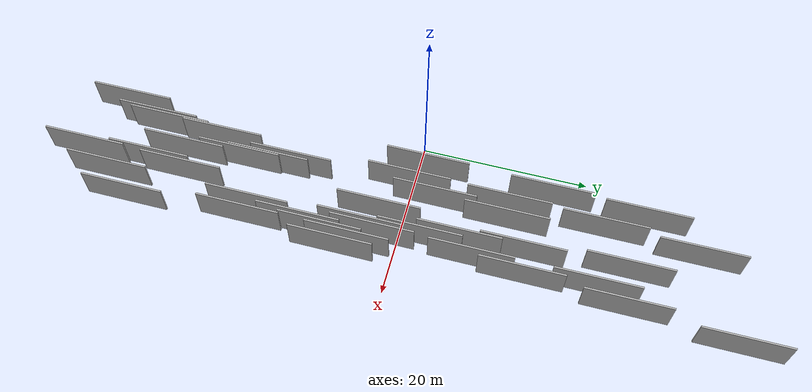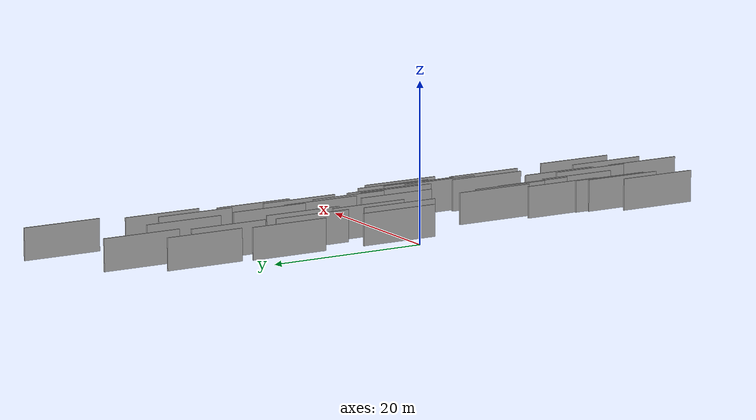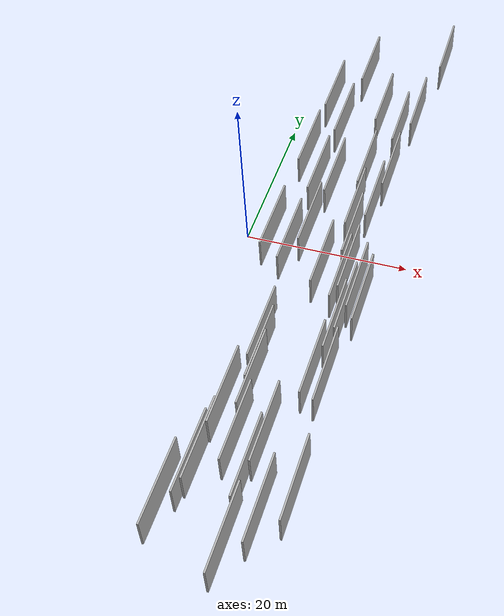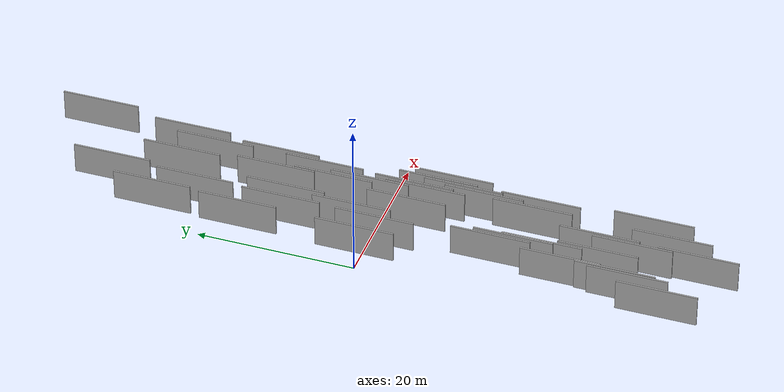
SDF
<sdf version="1.6">
 <world name="default">
  <scene>
   <sky><clouds><speed>12</speed></clouds></sky>
   <ambient>0.4 0.4 0.4 1</ambient>
   <background>0.7 0.7 0.7 1</background>
   <shadows>1</shadows>
  </scene>
  <gravity>0 0 -9.8066</gravity>
  <magnetic_field>6e-06 2.3e-05 -4.2e-05</magnetic_field>
  <physics default="0" name="default_physics" type="ode">
   <ode>
    <solver>
     <type>quick</type>
     <iters>10</iters>
     <sor>1.0</sor>
     <use_dynamic_moi_rescaling>0</use_dynamic_moi_rescaling>
    </solver>
    <constraints>
     <cfm>0</cfm>
     <erp>0.2</erp>
     <contact_max_correcting_vel>100</contact_max_correcting_vel>
     <contact_surface_layer>0.001</contact_surface_layer>
    </constraints>
   </ode>
   <max_step_size>0.004</max_step_size>
   <real_time_factor>1</real_time_factor>
   <real_time_update_rate>250</real_time_update_rate>
  </physics>
  <light name="sun" type="directional">
   <pose>0 0 10 0 0 0</pose>
   <diffuse>0.8 0.8 0.8 1</diffuse>
   <specular>0.2 0.2 0.2 1</specular>
   <attenuation>
    <range>1000</range>
    <constant>0.9</constant>
    <linear>0.01</linear>
    <quadratic>0.001</quadratic>
   </attenuation>
   <direction>-0.5 0.1 -0.9</direction>
  </light>
  <model name="grey_wall_1">
   <static>1</static>
   <pose>14.5591 14.6576 0.0 0.000000 0.000000 1.570796</pose>
   <link name="link">
    <pose>0 0 2.00 0 0 0</pose>
    <collision name="collision"><geometry><box><size>10.00 0.2 4.00</size></box></geometry></collision>
    <visual name="visual">
     <cast_shadows>0</cast_shadows>
     <geometry><box><size>10.00 0.2 4.00</size></box></geometry>
     <material>
      <script>
       <uri>model://HANNAS_wall/materials/scripts</uri>
       <uri>model://HANNAS_wall/materials/textures</uri>
       <name>vrc/HANNAS_wall</name>
      </script>
     </material>
    </visual>
   </link>
  </model>
  <model name="grey_wall_2">
   <static>1</static>
   <pose>12.6516 2.4701 0.0 0.000000 0.000000 1.570796</pose>
   <link name="link">
    <pose>0 0 2.00 0 0 0</pose>
    <collision name="collision"><geometry><box><size>10.00 0.2 4.00</size></box></geometry></collision>
    <visual name="visual">
     <cast_shadows>0</cast_shadows>
     <geometry><box><size>10.00 0.2 4.00</size></box></geometry>
     <material>
      <script>
       <uri>model://HANNAS_wall/materials/scripts</uri>
       <uri>model://HANNAS_wall/materials/textures</uri>
       <name>vrc/HANNAS_wall</name>
      </script>
     </material>
    </visual>
   </link>
  </model>
  <model name="grey_wall_3">
   <static>1</static>
   <pose>5.6440 -0.5587 0.0 0.000000 0.000000 1.570796</pose>
   <link name="link">
    <pose>0 0 2.00 0 0 0</pose>
    <collision name="collision"><geometry><box><size>10.00 0.2 4.00</size></box></geometry></collision>
    <visual name="visual">
     <cast_shadows>0</cast_shadows>
     <geometry><box><size>10.00 0.2 4.00</size></box></geometry>
     <material>
      <script>
       <uri>model://HANNAS_wall/materials/scripts</uri>
       <uri>model://HANNAS_wall/materials/textures</uri>
       <name>vrc/HANNAS_wall</name>
      </script>
     </material>
    </visual>
   </link>
  </model>
  <model name="grey_wall_4">
   <static>1</static>
   <pose>10.8336 26.2624 0.0 0.000000 0.000000 1.570796</pose>
   <link name="link">
    <pose>0 0 2.00 0 0 0</pose>
    <collision name="collision"><geometry><box><size>10.00 0.2 4.00</size></box></geometry></collision>
    <visual name="visual">
     <cast_shadows>0</cast_shadows>
     <geometry><box><size>10.00 0.2 4.00</size></box></geometry>
     <material>
      <script>
       <uri>model://HANNAS_wall/materials/scripts</uri>
       <uri>model://HANNAS_wall/materials/textures</uri>
       <name>vrc/HANNAS_wall</name>
      </script>
     </material>
    </visual>
   </link>
  </model>
  <model name="grey_wall_5">
   <static>1</static>
   <pose>14.3094 -11.5916 0.0 0.000000 0.000000 1.570796</pose>
   <link name="link">
    <pose>0 0 2.00 0 0 0</pose>
    <collision name="collision"><geometry><box><size>10.00 0.2 4.00</size></box></geometry></collision>
    <visual name="visual">
     <cast_shadows>0</cast_shadows>
     <geometry><box><size>10.00 0.2 4.00</size></box></geometry>
     <material>
      <script>
       <uri>model://HANNAS_wall/materials/scripts</uri>
       <uri>model://HANNAS_wall/materials/textures</uri>
       <name>vrc/HANNAS_wall</name>
      </script>
     </material>
    </visual>
   </link>
  </model>
  <model name="grey_wall_6">
   <static>1</static>
   <pose>5.8352 11.5006 0.0 0.000000 0.000000 1.570796</pose>
   <link name="link">
    <pose>0 0 2.00 0 0 0</pose>
    <collision name="collision"><geometry><box><size>10.00 0.2 4.00</size></box></geometry></collision>
    <visual name="visual">
     <cast_shadows>0</cast_shadows>
     <geometry><box><size>10.00 0.2 4.00</size></box></geometry>
     <material>
      <script>
       <uri>model://HANNAS_wall/materials/scripts</uri>
       <uri>model://HANNAS_wall/materials/textures</uri>
       <name>vrc/HANNAS_wall</name>
      </script>
     </material>
    </visual>
   </link>
  </model>
  <model name="grey_wall_7">
   <static>1</static>
   <pose>3.0012 1.0542 0.0 0.000000 0.000000 1.570796</pose>
   <link name="link">
    <pose>0 0 2.00 0 0 0</pose>
    <collision name="collision"><geometry><box><size>10.00 0.2 4.00</size></box></geometry></collision>
    <visual name="visual">
     <cast_shadows>0</cast_shadows>
     <geometry><box><size>10.00 0.2 4.00</size></box></geometry>
     <material>
      <script>
       <uri>model://HANNAS_wall/materials/scripts</uri>
       <uri>model://HANNAS_wall/materials/textures</uri>
       <name>vrc/HANNAS_wall</name>
      </script>
     </material>
    </visual>
   </link>
  </model>
  <model name="grey_wall_8">
   <static>1</static>
   <pose>10.9776 -39.4371 0.0 0.000000 0.000000 1.570796</pose>
   <link name="link">
    <pose>0 0 2.00 0 0 0</pose>
    <collision name="collision"><geometry><box><size>10.00 0.2 4.00</size></box></geometry></collision>
    <visual name="visual">
     <cast_shadows>0</cast_shadows>
     <geometry><box><size>10.00 0.2 4.00</size></box></geometry>
     <material>
      <script>
       <uri>model://HANNAS_wall/materials/scripts</uri>
       <uri>model://HANNAS_wall/materials/textures</uri>
       <name>vrc/HANNAS_wall</name>
      </script>
     </material>
    </visual>
   </link>
  </model>
  <model name="grey_wall_9">
   <static>1</static>
   <pose>15.4946 26.6555 0.0 0.000000 0.000000 1.570796</pose>
   <link name="link">
    <pose>0 0 2.00 0 0 0</pose>
    <collision name="collision"><geometry><box><size>10.00 0.2 4.00</size></box></geometry></collision>
    <visual name="visual">
     <cast_shadows>0</cast_shadows>
     <geometry><box><size>10.00 0.2 4.00</size></box></geometry>
     <material>
      <script>
       <uri>model://HANNAS_wall/materials/scripts</uri>
       <uri>model://HANNAS_wall/materials/textures</uri>
       <name>vrc/HANNAS_wall</name>
      </script>
     </material>
    </visual>
   </link>
  </model>
  <model name="grey_wall_10">
   <static>1</static>
   <pose>13.8523 23.0509 0.0 0.000000 0.000000 1.570796</pose>
   <link name="link">
    <pose>0 0 2.00 0 0 0</pose>
    <collision name="collision"><geometry><box><size>10.00 0.2 4.00</size></box></geometry></collision>
    <visual name="visual">
     <cast_shadows>0</cast_shadows>
     <geometry><box><size>10.00 0.2 4.00</size></box></geometry>
     <material>
      <script>
       <uri>model://HANNAS_wall/materials/scripts</uri>
       <uri>model://HANNAS_wall/materials/textures</uri>
       <name>vrc/HANNAS_wall</name>
      </script>
     </material>
    </visual>
   </link>
  </model>
  <model name="grey_wall_11">
   <static>1</static>
   <pose>8.2308 -27.8150 0.0 0.000000 0.000000 1.570796</pose>
   <link name="link">
    <pose>0 0 2.00 0 0 0</pose>
    <collision name="collision"><geometry><box><size>10.00 0.2 4.00</size></box></geometry></collision>
    <visual name="visual">
     <cast_shadows>0</cast_shadows>
     <geometry><box><size>10.00 0.2 4.00</size></box></geometry>
     <material>
      <script>
       <uri>model://HANNAS_wall/materials/scripts</uri>
       <uri>model://HANNAS_wall/materials/textures</uri>
       <name>vrc/HANNAS_wall</name>
      </script>
     </material>
    </visual>
   </link>
  </model>
  <model name="grey_wall_12">
   <static>1</static>
   <pose>7.9316 11.6078 0.0 0.000000 0.000000 1.570796</pose>
   <link name="link">
    <pose>0 0 2.00 0 0 0</pose>
    <collision name="collision"><geometry><box><size>10.00 0.2 4.00</size></box></geometry></collision>
    <visual name="visual">
     <cast_shadows>0</cast_shadows>
     <geometry><box><size>10.00 0.2 4.00</size></box></geometry>
     <material>
      <script>
       <uri>model://HANNAS_wall/materials/scripts</uri>
       <uri>model://HANNAS_wall/materials/textures</uri>
       <name>vrc/HANNAS_wall</name>
      </script>
     </material>
    </visual>
   </link>
  </model>
  <model name="grey_wall_13">
   <static>1</static>
   <pose>16.0471 -32.5343 0.0 0.000000 0.000000 1.570796</pose>
   <link name="link">
    <pose>0 0 2.00 0 0 0</pose>
    <collision name="collision"><geometry><box><size>10.00 0.2 4.00</size></box></geometry></collision>
    <visual name="visual">
     <cast_shadows>0</cast_shadows>
     <geometry><box><size>10.00 0.2 4.00</size></box></geometry>
     <material>
      <script>
       <uri>model://HANNAS_wall/materials/scripts</uri>
       <uri>model://HANNAS_wall/materials/textures</uri>
       <name>vrc/HANNAS_wall</name>
      </script>
     </material>
    </visual>
   </link>
  </model>
  <model name="grey_wall_14">
   <static>1</static>
   <pose>13.3429 -35.5786 0.0 0.000000 0.000000 1.570796</pose>
   <link name="link">
    <pose>0 0 2.00 0 0 0</pose>
    <collision name="collision"><geometry><box><size>10.00 0.2 4.00</size></box></geometry></collision>
    <visual name="visual">
     <cast_shadows>0</cast_shadows>
     <geometry><box><size>10.00 0.2 4.00</size></box></geometry>
     <material>
      <script>
       <uri>model://HANNAS_wall/materials/scripts</uri>
       <uri>model://HANNAS_wall/materials/textures</uri>
       <name>vrc/HANNAS_wall</name>
      </script>
     </material>
    </visual>
   </link>
  </model>
  <model name="grey_wall_15">
   <static>1</static>
   <pose>13.6002 -2.9209 0.0 0.000000 0.000000 1.570796</pose>
   <link name="link">
    <pose>0 0 2.00 0 0 0</pose>
    <collision name="collision"><geometry><box><size>10.00 0.2 4.00</size></box></geometry></collision>
    <visual name="visual">
     <cast_shadows>0</cast_shadows>
     <geometry><box><size>10.00 0.2 4.00</size></box></geometry>
     <material>
      <script>
       <uri>model://HANNAS_wall/materials/scripts</uri>
       <uri>model://HANNAS_wall/materials/textures</uri>
       <name>vrc/HANNAS_wall</name>
      </script>
     </material>
    </visual>
   </link>
  </model>
  <model name="grey_wall_16">
   <static>1</static>
   <pose>3.6301 27.3624 0.0 0.000000 0.000000 1.570796</pose>
   <link name="link">
    <pose>0 0 2.00 0 0 0</pose>
    <collision name="collision"><geometry><box><size>10.00 0.2 4.00</size></box></geometry></collision>
    <visual name="visual">
     <cast_shadows>0</cast_shadows>
     <geometry><box><size>10.00 0.2 4.00</size></box></geometry>
     <material>
      <script>
       <uri>model://HANNAS_wall/materials/scripts</uri>
       <uri>model://HANNAS_wall/materials/textures</uri>
       <name>vrc/HANNAS_wall</name>
      </script>
     </material>
    </visual>
   </link>
  </model>
  <model name="grey_wall_17">
   <static>1</static>
   <pose>5.3060 -30.7941 0.0 0.000000 0.000000 1.570796</pose>
   <link name="link">
    <pose>0 0 2.00 0 0 0</pose>
    <collision name="collision"><geometry><box><size>10.00 0.2 4.00</size></box></geometry></collision>
    <visual name="visual">
     <cast_shadows>0</cast_shadows>
     <geometry><box><size>10.00 0.2 4.00</size></box></geometry>
     <material>
      <script>
       <uri>model://HANNAS_wall/materials/scripts</uri>
       <uri>model://HANNAS_wall/materials/textures</uri>
       <name>vrc/HANNAS_wall</name>
      </script>
     </material>
    </visual>
   </link>
  </model>
  <model name="grey_wall_18">
   <static>1</static>
   <pose>6.8019 -14.8491 0.0 0.000000 0.000000 1.570796</pose>
   <link name="link">
    <pose>0 0 2.00 0 0 0</pose>
    <collision name="collision"><geometry><box><size>10.00 0.2 4.00</size></box></geometry></collision>
    <visual name="visual">
     <cast_shadows>0</cast_shadows>
     <geometry><box><size>10.00 0.2 4.00</size></box></geometry>
     <material>
      <script>
       <uri>model://HANNAS_wall/materials/scripts</uri>
       <uri>model://HANNAS_wall/materials/textures</uri>
       <name>vrc/HANNAS_wall</name>
      </script>
     </material>
    </visual>
   </link>
  </model>
  <model name="grey_wall_19">
   <static>1</static>
   <pose>11.4853 14.1973 0.0 0.000000 0.000000 1.570796</pose>
   <link name="link">
    <pose>0 0 2.00 0 0 0</pose>
    <collision name="collision"><geometry><box><size>10.00 0.2 4.00</size></box></geometry></collision>
    <visual name="visual">
     <cast_shadows>0</cast_shadows>
     <geometry><box><size>10.00 0.2 4.00</size></box></geometry>
     <material>
      <script>
       <uri>model://HANNAS_wall/materials/scripts</uri>
       <uri>model://HANNAS_wall/materials/textures</uri>
       <name>vrc/HANNAS_wall</name>
      </script>
     </material>
    </visual>
   </link>
  </model>
  <model name="grey_wall_20">
   <static>1</static>
   <pose>16.8270 39.4609 0.0 0.000000 0.000000 1.570796</pose>
   <link name="link">
    <pose>0 0 2.00 0 0 0</pose>
    <collision name="collision"><geometry><box><size>10.00 0.2 4.00</size></box></geometry></collision>
    <visual name="visual">
     <cast_shadows>0</cast_shadows>
     <geometry><box><size>10.00 0.2 4.00</size></box></geometry>
     <material>
      <script>
       <uri>model://HANNAS_wall/materials/scripts</uri>
       <uri>model://HANNAS_wall/materials/textures</uri>
       <name>vrc/HANNAS_wall</name>
      </script>
     </material>
    </visual>
   </link>
  </model>
  <model name="grey_wall_21">
   <static>1</static>
   <pose>13.6055 -17.9952 0.0 0.000000 0.000000 1.570796</pose>
   <link name="link">
    <pose>0 0 2.00 0 0 0</pose>
    <collision name="collision"><geometry><box><size>10.00 0.2 4.00</size></box></geometry></collision>
    <visual name="visual">
     <cast_shadows>0</cast_shadows>
     <geometry><box><size>10.00 0.2 4.00</size></box></geometry>
     <material>
      <script>
       <uri>model://HANNAS_wall/materials/scripts</uri>
       <uri>model://HANNAS_wall/materials/textures</uri>
       <name>vrc/HANNAS_wall</name>
      </script>
     </material>
    </visual>
   </link>
  </model>
  <model name="grey_wall_22">
   <static>1</static>
   <pose>16.3562 -7.1134 0.0 0.000000 0.000000 1.570796</pose>
   <link name="link">
    <pose>0 0 2.00 0 0 0</pose>
    <collision name="collision"><geometry><box><size>10.00 0.2 4.00</size></box></geometry></collision>
    <visual name="visual">
     <cast_shadows>0</cast_shadows>
     <geometry><box><size>10.00 0.2 4.00</size></box></geometry>
     <material>
      <script>
       <uri>model://HANNAS_wall/materials/scripts</uri>
       <uri>model://HANNAS_wall/materials/textures</uri>
       <name>vrc/HANNAS_wall</name>
      </script>
     </material>
    </visual>
   </link>
  </model>
  <model name="grey_wall_23">
   <static>1</static>
   <pose>3.2082 -36.5360 0.0 0.000000 0.000000 1.570796</pose>
   <link name="link">
    <pose>0 0 2.00 0 0 0</pose>
    <collision name="collision"><geometry><box><size>10.00 0.2 4.00</size></box></geometry></collision>
    <visual name="visual">
     <cast_shadows>0</cast_shadows>
     <geometry><box><size>10.00 0.2 4.00</size></box></geometry>
     <material>
      <script>
       <uri>model://HANNAS_wall/materials/scripts</uri>
       <uri>model://HANNAS_wall/materials/textures</uri>
       <name>vrc/HANNAS_wall</name>
      </script>
     </material>
    </visual>
   </link>
  </model>
  <model name="grey_wall_24">
   <static>1</static>
   <pose>5.5237 -23.9628 0.0 0.000000 0.000000 1.570796</pose>
   <link name="link">
    <pose>0 0 2.00 0 0 0</pose>
    <collision name="collision"><geometry><box><size>10.00 0.2 4.00</size></box></geometry></collision>
    <visual name="visual">
     <cast_shadows>0</cast_shadows>
     <geometry><box><size>10.00 0.2 4.00</size></box></geometry>
     <material>
      <script>
       <uri>model://HANNAS_wall/materials/scripts</uri>
       <uri>model://HANNAS_wall/materials/textures</uri>
       <name>vrc/HANNAS_wall</name>
      </script>
     </material>
    </visual>
   </link>
  </model>
  <model name="grey_wall_25">
   <static>1</static>
   <pose>13.0710 -4.5706 0.0 0.000000 0.000000 1.570796</pose>
   <link name="link">
    <pose>0 0 2.00 0 0 0</pose>
    <collision name="collision"><geometry><box><size>10.00 0.2 4.00</size></box></geometry></collision>
    <visual name="visual">
     <cast_shadows>0</cast_shadows>
     <geometry><box><size>10.00 0.2 4.00</size></box></geometry>
     <material>
      <script>
       <uri>model://HANNAS_wall/materials/scripts</uri>
       <uri>model://HANNAS_wall/materials/textures</uri>
       <name>vrc/HANNAS_wall</name>
      </script>
     </material>
    </visual>
   </link>
  </model>
  <model name="grey_wall_26">
   <static>1</static>
   <pose>14.8369 -8.8168 0.0 0.000000 0.000000 1.570796</pose>
   <link name="link">
    <pose>0 0 2.00 0 0 0</pose>
    <collision name="collision"><geometry><box><size>10.00 0.2 4.00</size></box></geometry></collision>
    <visual name="visual">
     <cast_shadows>0</cast_shadows>
     <geometry><box><size>10.00 0.2 4.00</size></box></geometry>
     <material>
      <script>
       <uri>model://HANNAS_wall/materials/scripts</uri>
       <uri>model://HANNAS_wall/materials/textures</uri>
       <name>vrc/HANNAS_wall</name>
      </script>
     </material>
    </visual>
   </link>
  </model>
  <model name="grey_wall_27">
   <static>1</static>
   <pose>11.1741 -27.1541 0.0 0.000000 0.000000 1.570796</pose>
   <link name="link">
    <pose>0 0 2.00 0 0 0</pose>
    <collision name="collision"><geometry><box><size>10.00 0.2 4.00</size></box></geometry></collision>
    <visual name="visual">
     <cast_shadows>0</cast_shadows>
     <geometry><box><size>10.00 0.2 4.00</size></box></geometry>
     <material>
      <script>
       <uri>model://HANNAS_wall/materials/scripts</uri>
       <uri>model://HANNAS_wall/materials/textures</uri>
       <name>vrc/HANNAS_wall</name>
      </script>
     </material>
    </visual>
   </link>
  </model>
  <model name="grey_wall_28">
   <static>1</static>
   <pose>10.4038 -2.9863 0.0 0.000000 0.000000 1.570796</pose>
   <link name="link">
    <pose>0 0 2.00 0 0 0</pose>
    <collision name="collision"><geometry><box><size>10.00 0.2 4.00</size></box></geometry></collision>
    <visual name="visual">
     <cast_shadows>0</cast_shadows>
     <geometry><box><size>10.00 0.2 4.00</size></box></geometry>
     <material>
      <script>
       <uri>model://HANNAS_wall/materials/scripts</uri>
       <uri>model://HANNAS_wall/materials/textures</uri>
       <name>vrc/HANNAS_wall</name>
      </script>
     </material>
    </visual>
   </link>
  </model>
  <model name="grey_wall_29">
   <static>1</static>
   <pose>7.4348 -17.5020 0.0 0.000000 0.000000 1.570796</pose>
   <link name="link">
    <pose>0 0 2.00 0 0 0</pose>
    <collision name="collision"><geometry><box><size>10.00 0.2 4.00</size></box></geometry></collision>
    <visual name="visual">
     <cast_shadows>0</cast_shadows>
     <geometry><box><size>10.00 0.2 4.00</size></box></geometry>
     <material>
      <script>
       <uri>model://HANNAS_wall/materials/scripts</uri>
       <uri>model://HANNAS_wall/materials/textures</uri>
       <name>vrc/HANNAS_wall</name>
      </script>
     </material>
    </visual>
   </link>
  </model>
  <model name="grey_wall_30">
   <static>1</static>
   <pose>15.2080 -18.5576 0.0 0.000000 0.000000 1.570796</pose>
   <link name="link">
    <pose>0 0 2.00 0 0 0</pose>
    <collision name="collision"><geometry><box><size>10.00 0.2 4.00</size></box></geometry></collision>
    <visual name="visual">
     <cast_shadows>0</cast_shadows>
     <geometry><box><size>10.00 0.2 4.00</size></box></geometry>
     <material>
      <script>
       <uri>model://HANNAS_wall/materials/scripts</uri>
       <uri>model://HANNAS_wall/materials/textures</uri>
       <name>vrc/HANNAS_wall</name>
      </script>
     </material>
    </visual>
   </link>
  </model>
  <model name="grey_wall_31">
   <static>1</static>
   <pose>13.8560 8.7367 0.0 0.000000 0.000000 1.570796</pose>
   <link name="link">
    <pose>0 0 2.00 0 0 0</pose>
    <collision name="collision"><geometry><box><size>10.00 0.2 4.00</size></box></geometry></collision>
    <visual name="visual">
     <cast_shadows>0</cast_shadows>
     <geometry><box><size>10.00 0.2 4.00</size></box></geometry>
     <material>
      <script>
       <uri>model://HANNAS_wall/materials/scripts</uri>
       <uri>model://HANNAS_wall/materials/textures</uri>
       <name>vrc/HANNAS_wall</name>
      </script>
     </material>
    </visual>
   </link>
  </model>
  <model name="grey_wall_32">
   <static>1</static>
   <pose>3.2516 16.1209 0.0 0.000000 0.000000 1.570796</pose>
   <link name="link">
    <pose>0 0 2.00 0 0 0</pose>
    <collision name="collision"><geometry><box><size>10.00 0.2 4.00</size></box></geometry></collision>
    <visual name="visual">
     <cast_shadows>0</cast_shadows>
     <geometry><box><size>10.00 0.2 4.00</size></box></geometry>
     <material>
      <script>
       <uri>model://HANNAS_wall/materials/scripts</uri>
       <uri>model://HANNAS_wall/materials/textures</uri>
       <name>vrc/HANNAS_wall</name>
      </script>
     </material>
    </visual>
   </link>
  </model>
  <model name="grey_wall_33">
   <static>1</static>
   <pose>15.2906 -5.4555 0.0 0.000000 0.000000 1.570796</pose>
   <link name="link">
    <pose>0 0 2.00 0 0 0</pose>
    <collision name="collision"><geometry><box><size>10.00 0.2 4.00</size></box></geometry></collision>
    <visual name="visual">
     <cast_shadows>0</cast_shadows>
     <geometry><box><size>10.00 0.2 4.00</size></box></geometry>
     <material>
      <script>
       <uri>model://HANNAS_wall/materials/scripts</uri>
       <uri>model://HANNAS_wall/materials/textures</uri>
       <name>vrc/HANNAS_wall</name>
      </script>
     </material>
    </visual>
   </link>
  </model>
  <model name="grey_wall_34">
   <static>1</static>
   <pose>11.8388 6.8833 0.0 0.000000 0.000000 1.570796</pose>
   <link name="link">
    <pose>0 0 2.00 0 0 0</pose>
    <collision name="collision"><geometry><box><size>10.00 0.2 4.00</size></box></geometry></collision>
    <visual name="visual">
     <cast_shadows>0</cast_shadows>
     <geometry><box><size>10.00 0.2 4.00</size></box></geometry>
     <material>
      <script>
       <uri>model://HANNAS_wall/materials/scripts</uri>
       <uri>model://HANNAS_wall/materials/textures</uri>
       <name>vrc/HANNAS_wall</name>
      </script>
     </material>
    </visual>
   </link>
  </model>
  <model name="grey_wall_35">
   <static>1</static>
   <pose>6.1838 22.7724 0.0 0.000000 0.000000 1.570796</pose>
   <link name="link">
    <pose>0 0 2.00 0 0 0</pose>
    <collision name="collision"><geometry><box><size>10.00 0.2 4.00</size></box></geometry></collision>
    <visual name="visual">
     <cast_shadows>0</cast_shadows>
     <geometry><box><size>10.00 0.2 4.00</size></box></geometry>
     <material>
      <script>
       <uri>model://HANNAS_wall/materials/scripts</uri>
       <uri>model://HANNAS_wall/materials/textures</uri>
       <name>vrc/HANNAS_wall</name>
      </script>
     </material>
    </visual>
   </link>
  </model>
  <model name="grey_wall_36">
   <static>1</static>
   <pose>7.0269 33.9500 0.0 0.000000 0.000000 1.570796</pose>
   <link name="link">
    <pose>0 0 2.00 0 0 0</pose>
    <collision name="collision"><geometry><box><size>10.00 0.2 4.00</size></box></geometry></collision>
    <visual name="visual">
     <cast_shadows>0</cast_shadows>
     <geometry><box><size>10.00 0.2 4.00</size></box></geometry>
     <material>
      <script>
       <uri>model://HANNAS_wall/materials/scripts</uri>
       <uri>model://HANNAS_wall/materials/textures</uri>
       <name>vrc/HANNAS_wall</name>
      </script>
     </material>
    </visual>
   </link>
  </model>
  <model name="grey_wall_37">
   <static>1</static>
   <pose>7.1787 2.9043 0.0 0.000000 0.000000 1.570796</pose>
   <link name="link">
    <pose>0 0 2.00 0 0 0</pose>
    <collision name="collision"><geometry><box><size>10.00 0.2 4.00</size></box></geometry></collision>
    <visual name="visual">
     <cast_shadows>0</cast_shadows>
     <geometry><box><size>10.00 0.2 4.00</size></box></geometry>
     <material>
      <script>
       <uri>model://HANNAS_wall/materials/scripts</uri>
       <uri>model://HANNAS_wall/materials/textures</uri>
       <name>vrc/HANNAS_wall</name>
      </script>
     </material>
    </visual>
   </link>
  </model>
  <model name="grey_wall_38">
   <static>1</static>
   <pose>7.6711 -21.0165 0.0 0.000000 0.000000 1.570796</pose>
   <link name="link">
    <pose>0 0 2.00 0 0 0</pose>
    <collision name="collision"><geometry><box><size>10.00 0.2 4.00</size></box></geometry></collision>
    <visual name="visual">
     <cast_shadows>0</cast_shadows>
     <geometry><box><size>10.00 0.2 4.00</size></box></geometry>
     <material>
      <script>
       <uri>model://HANNAS_wall/materials/scripts</uri>
       <uri>model://HANNAS_wall/materials/textures</uri>
       <name>vrc/HANNAS_wall</name>
      </script>
     </material>
    </visual>
   </link>
  </model>
  <model name="grey_wall_39">
   <static>1</static>
   <pose>10.6333 -31.3852 0.0 0.000000 0.000000 1.570796</pose>
   <link name="link">
    <pose>0 0 2.00 0 0 0</pose>
    <collision name="collision"><geometry><box><size>10.00 0.2 4.00</size></box></geometry></collision>
    <visual name="visual">
     <cast_shadows>0</cast_shadows>
     <geometry><box><size>10.00 0.2 4.00</size></box></geometry>
     <material>
      <script>
       <uri>model://HANNAS_wall/materials/scripts</uri>
       <uri>model://HANNAS_wall/materials/textures</uri>
       <name>vrc/HANNAS_wall</name>
      </script>
     </material>
    </visual>
   </link>
  </model>
  <model name="grey_wall_40">
   <static>1</static>
   <pose>4.9202 -32.4458 0.0 0.000000 0.000000 1.570796</pose>
   <link name="link">
    <pose>0 0 2.00 0 0 0</pose>
    <collision name="collision"><geometry><box><size>10.00 0.2 4.00</size></box></geometry></collision>
    <visual name="visual">
     <cast_shadows>0</cast_shadows>
     <geometry><box><size>10.00 0.2 4.00</size></box></geometry>
     <material>
      <script>
       <uri>model://HANNAS_wall/materials/scripts</uri>
       <uri>model://HANNAS_wall/materials/textures</uri>
       <name>vrc/HANNAS_wall</name>
      </script>
     </material>
    </visual>
   </link>
  </model>
 </world>
</sdf>
